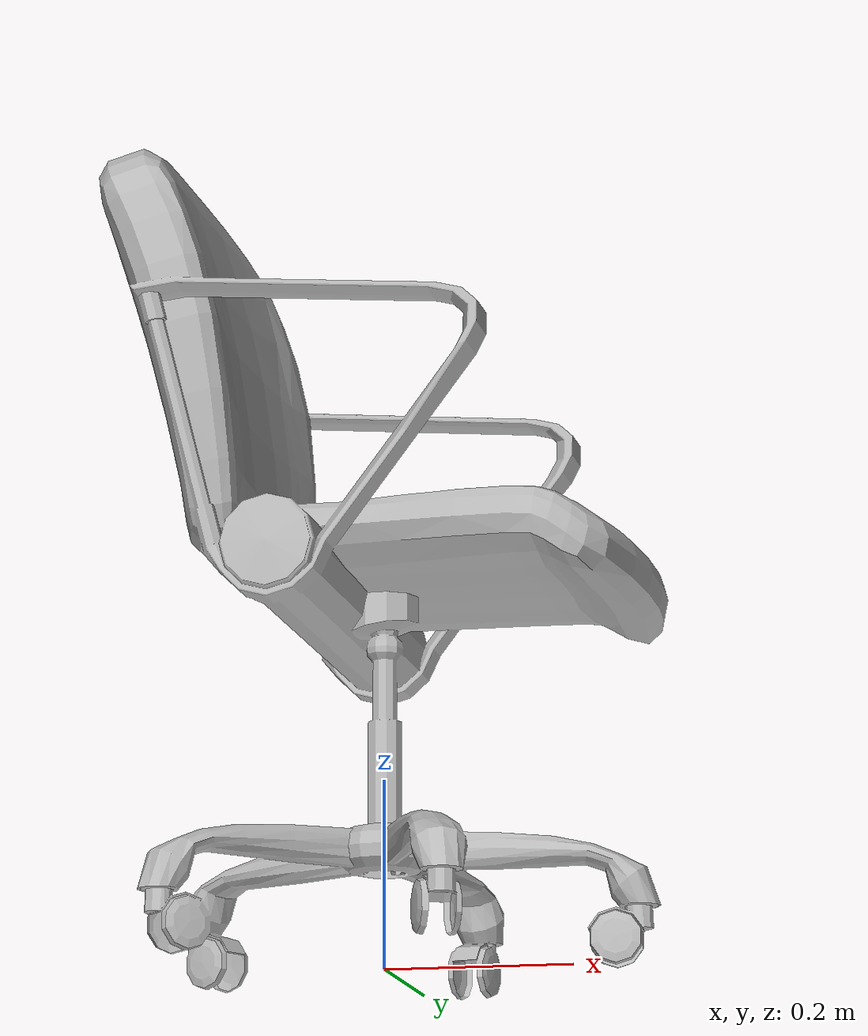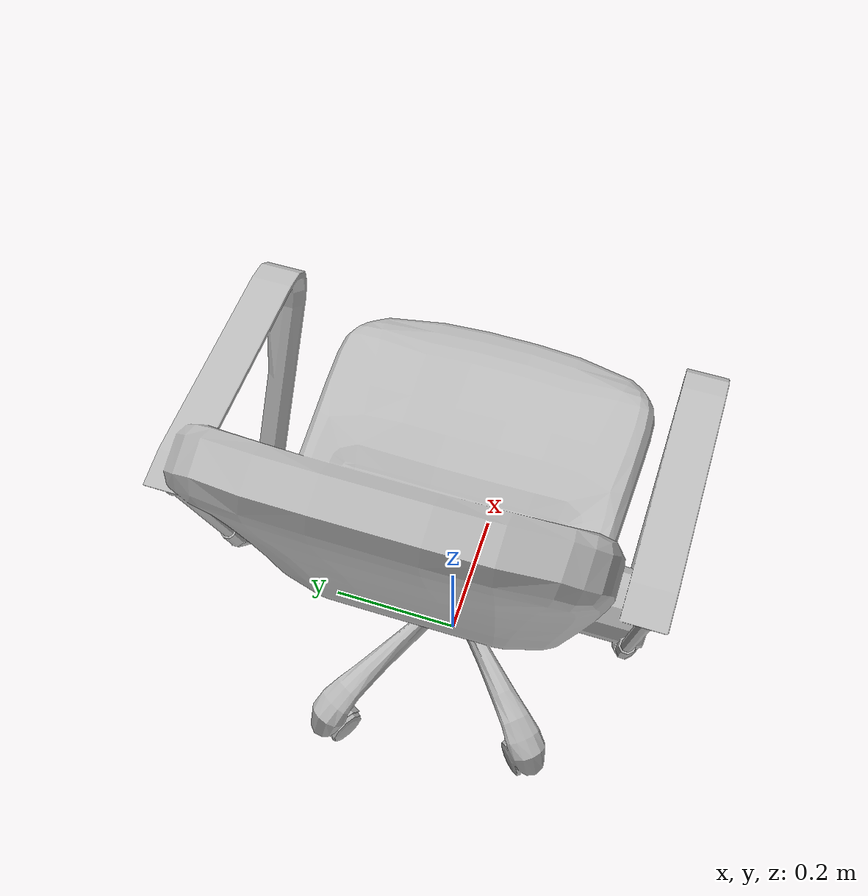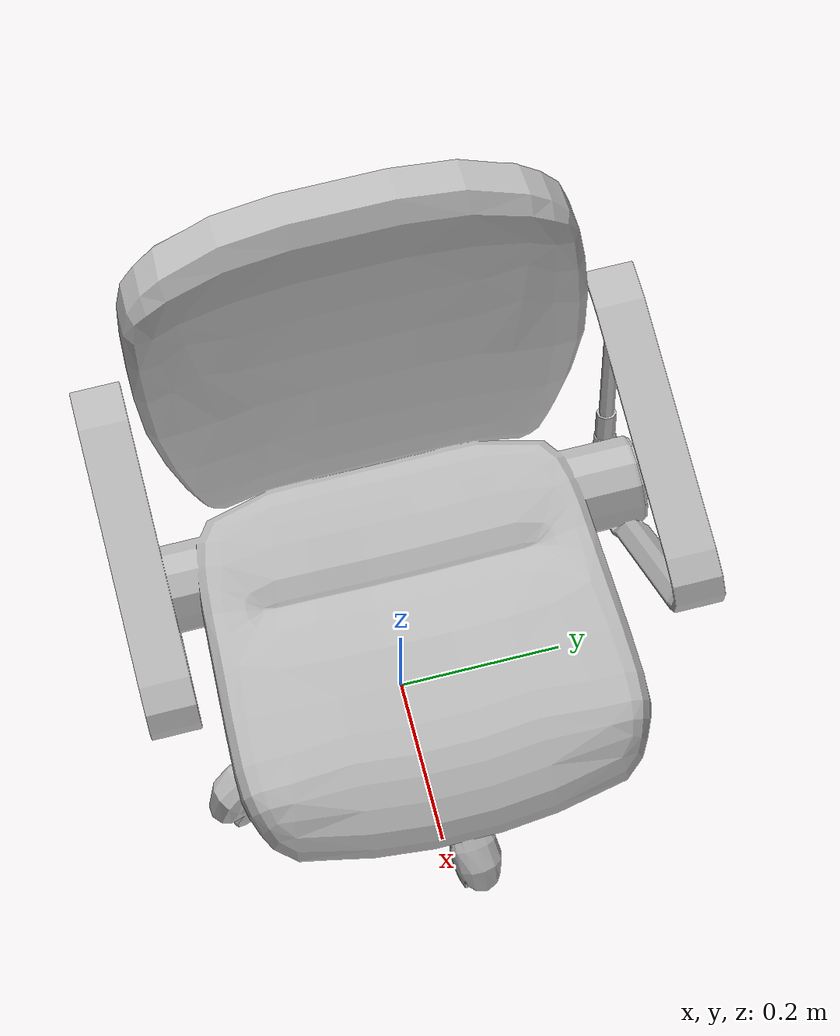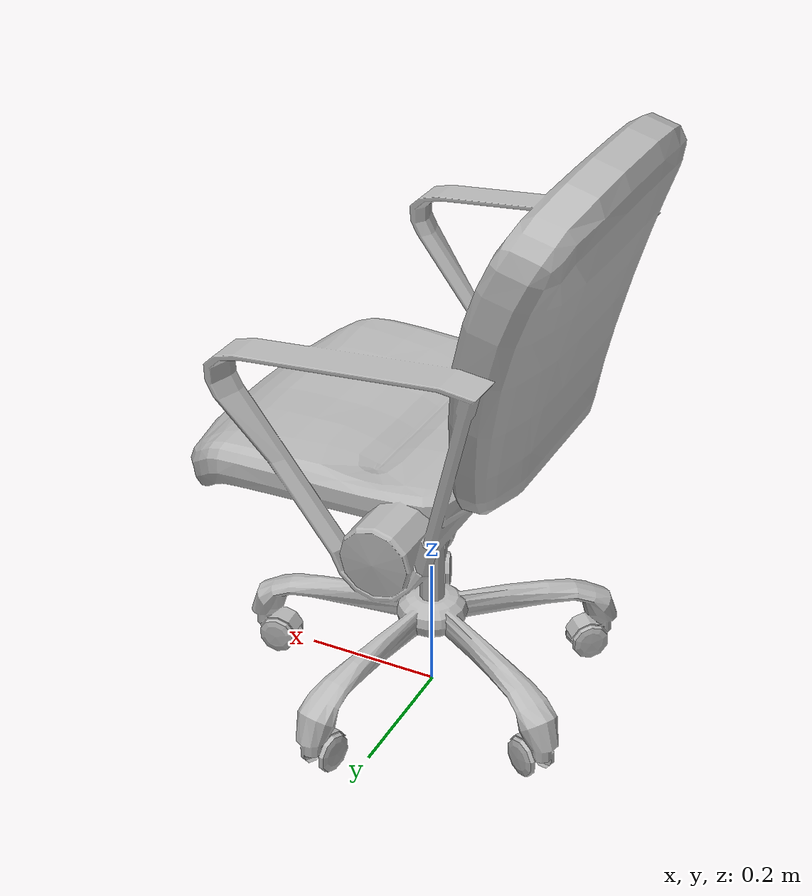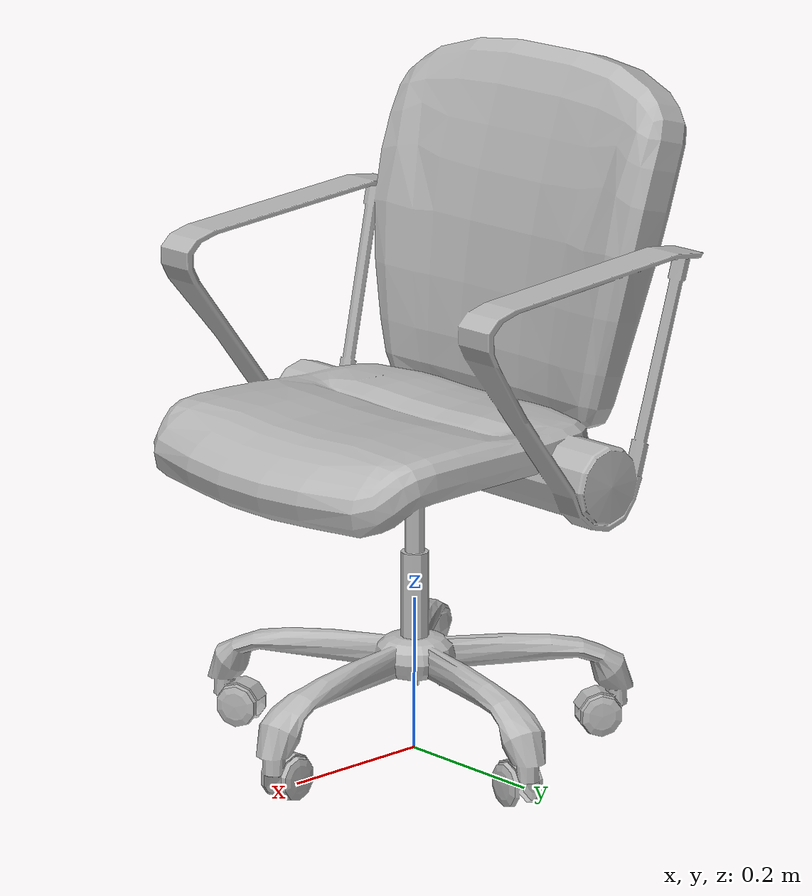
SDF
<?xml version='1.0'?>
<sdf version='1.4'>
  <model name='677'>
    <pose>0 0 0 0 0 0</pose>
    <static>true</static>
    <link name='link'>
      <collision name='collision'>
        <pose>0 0 0 0 0 0</pose>
        <geometry>
          <box>
            <size>0.578003 0.599482 2</size>
          </box>
        </geometry>
      </collision>
      <visual name='visual'>
        <pose>0 0 0 0 0 0</pose>
        <geometry>
          <mesh><uri>model://677/677.dae</uri></mesh>
        </geometry>
      </visual>
    </link>
  </model>
</sdf>
